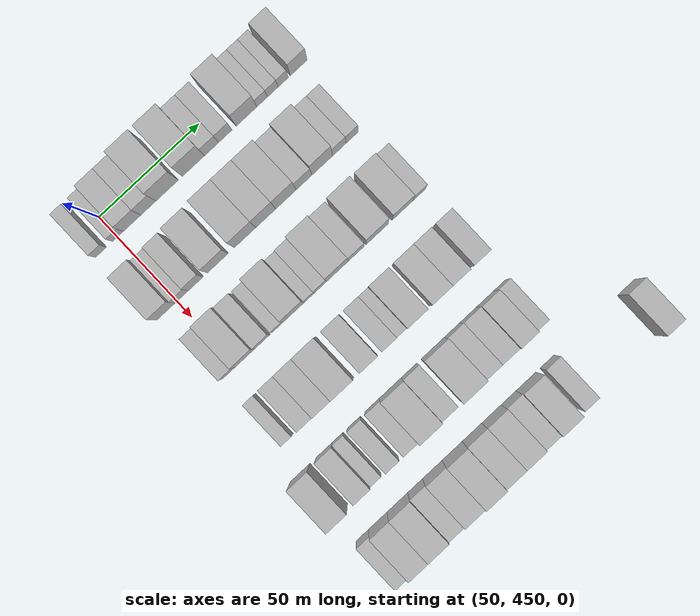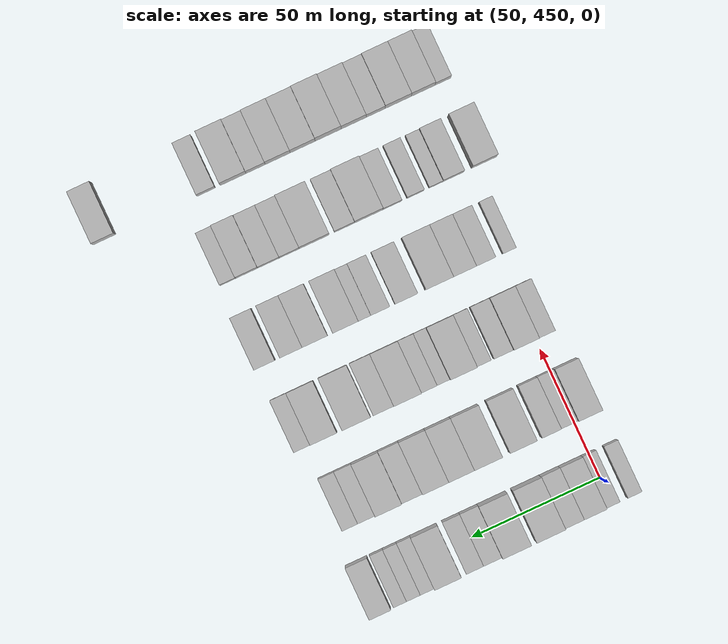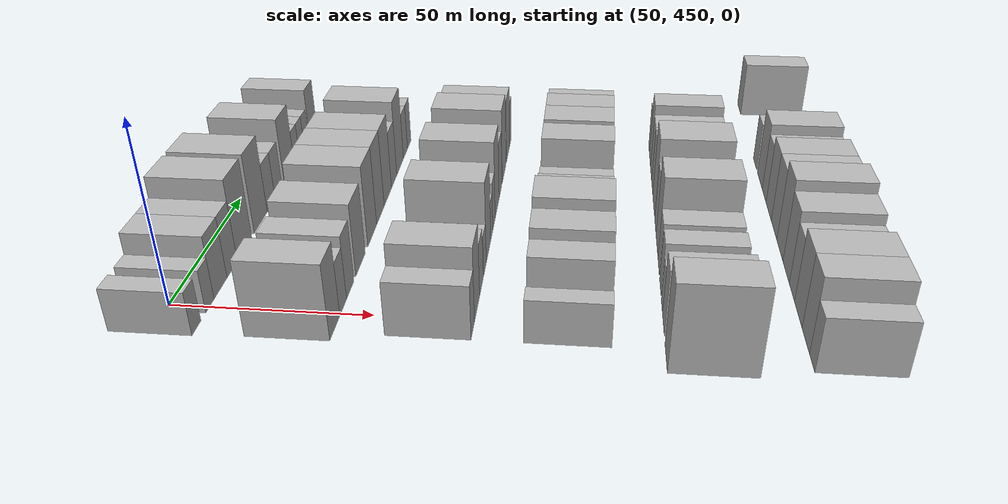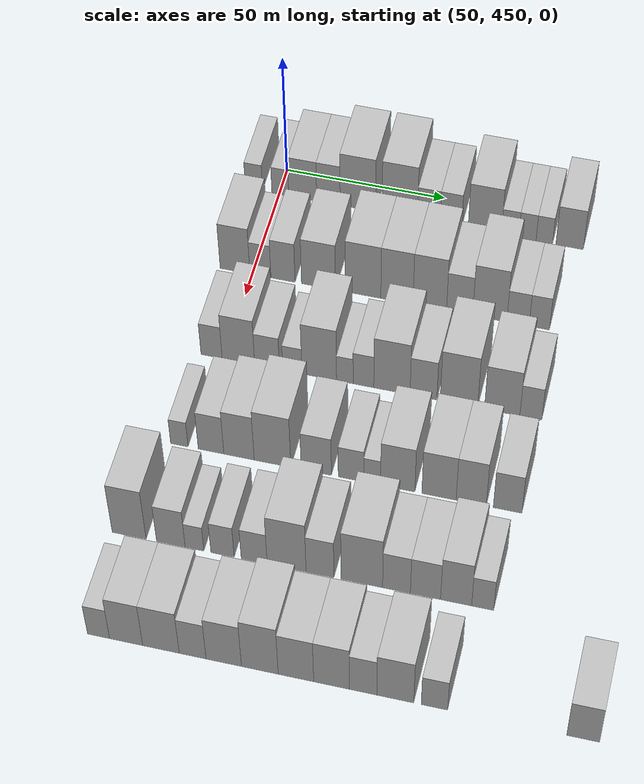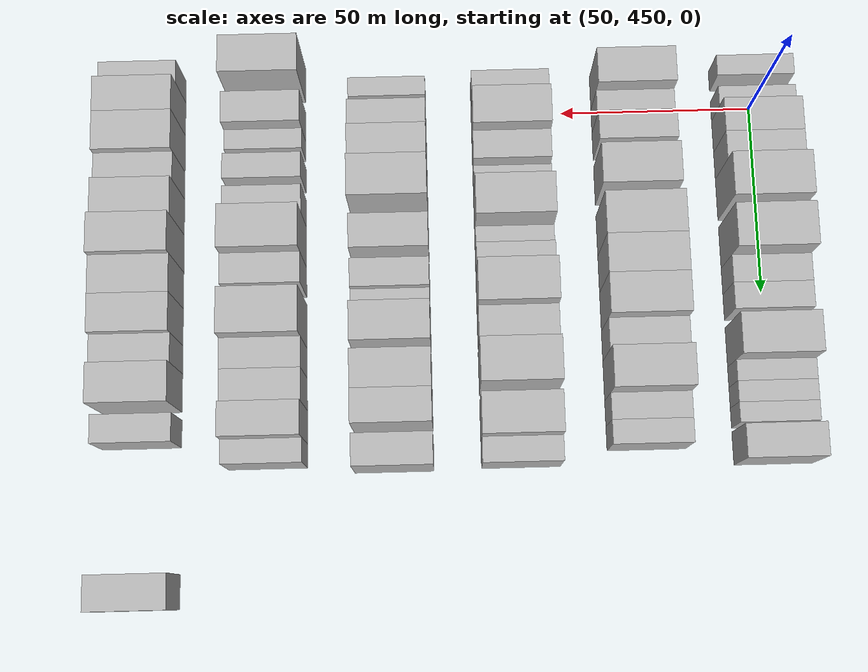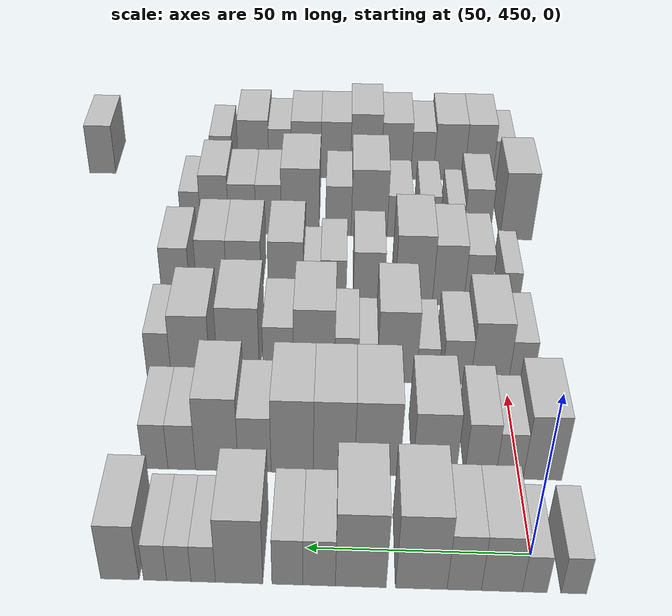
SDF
<sdf version="1.6">
 <world name="default">
  <model name="building_111">
   <static>1</static>
   <pose>50.0000 442.0036 0 0.000000 0.000000 0.000000</pose>
   <link name="link">
    <pose>0 0 6.00 0 0 0</pose>
    <collision name="collision"><geometry><box><size>20.0000 5.4600 12.0000</size></box></geometry></collision>
    <visual name="visual">
     <cast_shadows>0</cast_shadows>
     <geometry><box><size>20.0000 5.4600 12.0000</size></box></geometry>
     <material>
      <script>
       <uri>model://HANNAS_wall/materials/scripts</uri>
       <uri>model://HANNAS_wall/materials/textures</uri>
       <name>vrc/HANNAS_wall</name>
      </script>
     </material>
    </visual>
   </link>
  </model>
  <model name="building_112">
   <static>1</static>
   <pose>50.0000 450.4099 0 0.000000 0.000000 0.000000</pose>
   <link name="link">
    <pose>0 0 6.00 0 0 0</pose>
    <collision name="collision"><geometry><box><size>20.0000 5.3527 12.0000</size></box></geometry></collision>
    <visual name="visual">
     <cast_shadows>0</cast_shadows>
     <geometry><box><size>20.0000 5.3527 12.0000</size></box></geometry>
     <material>
      <script>
       <uri>model://HANNAS_wall/materials/scripts</uri>
       <uri>model://HANNAS_wall/materials/textures</uri>
       <name>vrc/HANNAS_wall</name>
      </script>
     </material>
    </visual>
   </link>
  </model>
  <model name="building_113">
   <static>1</static>
   <pose>50.0000 457.4978 0 0.000000 0.000000 0.000000</pose>
   <link name="link">
    <pose>0 0 9.00 0 0 0</pose>
    <collision name="collision"><geometry><box><size>20.0000 8.8231 18.0000</size></box></geometry></collision>
    <visual name="visual">
     <cast_shadows>0</cast_shadows>
     <geometry><box><size>20.0000 8.8231 18.0000</size></box></geometry>
     <material>
      <script>
       <uri>model://HANNAS_wall/materials/scripts</uri>
       <uri>model://HANNAS_wall/materials/textures</uri>
       <name>vrc/HANNAS_wall</name>
      </script>
     </material>
    </visual>
   </link>
  </model>
  <model name="building_114">
   <static>1</static>
   <pose>50.0000 465.6105 0 0.000000 0.000000 0.000000</pose>
   <link name="link">
    <pose>0 0 9.00 0 0 0</pose>
    <collision name="collision"><geometry><box><size>20.0000 7.4023 18.0000</size></box></geometry></collision>
    <visual name="visual">
     <cast_shadows>0</cast_shadows>
     <geometry><box><size>20.0000 7.4023 18.0000</size></box></geometry>
     <material>
      <script>
       <uri>model://HANNAS_wall/materials/scripts</uri>
       <uri>model://HANNAS_wall/materials/textures</uri>
       <name>vrc/HANNAS_wall</name>
      </script>
     </material>
    </visual>
   </link>
  </model>
  <model name="building_115">
   <static>1</static>
   <pose>50.0000 474.8818 0 0.000000 0.000000 0.000000</pose>
   <link name="link">
    <pose>0 0 12.00 0 0 0</pose>
    <collision name="collision"><geometry><box><size>20.0000 11.1403 24.0000</size></box></geometry></collision>
    <visual name="visual">
     <cast_shadows>0</cast_shadows>
     <geometry><box><size>20.0000 11.1403 24.0000</size></box></geometry>
     <material>
      <script>
       <uri>model://HANNAS_wall/materials/scripts</uri>
       <uri>model://HANNAS_wall/materials/textures</uri>
       <name>vrc/HANNAS_wall</name>
      </script>
     </material>
    </visual>
   </link>
  </model>
  <model name="building_116">
   <static>1</static>
   <pose>50.0000 487.9712 0 0.000000 0.000000 0.000000</pose>
   <link name="link">
    <pose>0 0 12.00 0 0 0</pose>
    <collision name="collision"><geometry><box><size>20.0000 11.0385 24.0000</size></box></geometry></collision>
    <visual name="visual">
     <cast_shadows>0</cast_shadows>
     <geometry><box><size>20.0000 11.0385 24.0000</size></box></geometry>
     <material>
      <script>
       <uri>model://HANNAS_wall/materials/scripts</uri>
       <uri>model://HANNAS_wall/materials/textures</uri>
       <name>vrc/HANNAS_wall</name>
      </script>
     </material>
    </visual>
   </link>
  </model>
  <model name="building_117">
   <static>1</static>
   <pose>50.0000 497.0116 0 0.000000 0.000000 0.000000</pose>
   <link name="link">
    <pose>0 0 7.50 0 0 0</pose>
    <collision name="collision"><geometry><box><size>20.0000 7.0424 15.0000</size></box></geometry></collision>
    <visual name="visual">
     <cast_shadows>0</cast_shadows>
     <geometry><box><size>20.0000 7.0424 15.0000</size></box></geometry>
     <material>
      <script>
       <uri>model://HANNAS_wall/materials/scripts</uri>
       <uri>model://HANNAS_wall/materials/textures</uri>
       <name>vrc/HANNAS_wall</name>
      </script>
     </material>
    </visual>
   </link>
  </model>
  <model name="building_118">
   <static>1</static>
   <pose>50.0000 503.8961 0 0.000000 0.000000 0.000000</pose>
   <link name="link">
    <pose>0 0 7.50 0 0 0</pose>
    <collision name="collision"><geometry><box><size>20.0000 6.7266 15.0000</size></box></geometry></collision>
    <visual name="visual">
     <cast_shadows>0</cast_shadows>
     <geometry><box><size>20.0000 6.7266 15.0000</size></box></geometry>
     <material>
      <script>
       <uri>model://HANNAS_wall/materials/scripts</uri>
       <uri>model://HANNAS_wall/materials/textures</uri>
       <name>vrc/HANNAS_wall</name>
      </script>
     </material>
    </visual>
   </link>
  </model>
  <model name="building_119">
   <static>1</static>
   <pose>50.0000 514.4172 0 0.000000 0.000000 0.000000</pose>
   <link name="link">
    <pose>0 0 10.50 0 0 0</pose>
    <collision name="collision"><geometry><box><size>20.0000 10.3154 21.0000</size></box></geometry></collision>
    <visual name="visual">
     <cast_shadows>0</cast_shadows>
     <geometry><box><size>20.0000 10.3154 21.0000</size></box></geometry>
     <material>
      <script>
       <uri>model://HANNAS_wall/materials/scripts</uri>
       <uri>model://HANNAS_wall/materials/textures</uri>
       <name>vrc/HANNAS_wall</name>
      </script>
     </material>
    </visual>
   </link>
  </model>
  <model name="building_120">
   <static>1</static>
   <pose>50.0000 522.2414 0 0.000000 0.000000 0.000000</pose>
   <link name="link">
    <pose>0 0 6.00 0 0 0</pose>
    <collision name="collision"><geometry><box><size>20.0000 5.3331 12.0000</size></box></geometry></collision>
    <visual name="visual">
     <cast_shadows>0</cast_shadows>
     <geometry><box><size>20.0000 5.3331 12.0000</size></box></geometry>
     <material>
      <script>
       <uri>model://HANNAS_wall/materials/scripts</uri>
       <uri>model://HANNAS_wall/materials/textures</uri>
       <name>vrc/HANNAS_wall</name>
      </script>
     </material>
    </visual>
   </link>
  </model>
  <model name="building_121">
   <static>1</static>
   <pose>50.0000 527.5682 0 0.000000 0.000000 0.000000</pose>
   <link name="link">
    <pose>0 0 6.00 0 0 0</pose>
    <collision name="collision"><geometry><box><size>20.0000 5.3204 12.0000</size></box></geometry></collision>
    <visual name="visual">
     <cast_shadows>0</cast_shadows>
     <geometry><box><size>20.0000 5.3204 12.0000</size></box></geometry>
     <material>
      <script>
       <uri>model://HANNAS_wall/materials/scripts</uri>
       <uri>model://HANNAS_wall/materials/textures</uri>
       <name>vrc/HANNAS_wall</name>
      </script>
     </material>
    </visual>
   </link>
  </model>
  <model name="building_122">
   <static>1</static>
   <pose>50.0000 532.7677 0 0.000000 0.000000 0.000000</pose>
   <link name="link">
    <pose>0 0 6.00 0 0 0</pose>
    <collision name="collision"><geometry><box><size>20.0000 5.0787 12.0000</size></box></geometry></collision>
    <visual name="visual">
     <cast_shadows>0</cast_shadows>
     <geometry><box><size>20.0000 5.0787 12.0000</size></box></geometry>
     <material>
      <script>
       <uri>model://HANNAS_wall/materials/scripts</uri>
       <uri>model://HANNAS_wall/materials/textures</uri>
       <name>vrc/HANNAS_wall</name>
      </script>
     </material>
    </visual>
   </link>
  </model>
  <model name="building_123">
   <static>1</static>
   <pose>50.0000 540.5076 0 0.000000 0.000000 0.000000</pose>
   <link name="link">
    <pose>0 0 9.00 0 0 0</pose>
    <collision name="collision"><geometry><box><size>20.0000 8.4010 18.0000</size></box></geometry></collision>
    <visual name="visual">
     <cast_shadows>0</cast_shadows>
     <geometry><box><size>20.0000 8.4010 18.0000</size></box></geometry>
     <material>
      <script>
       <uri>model://HANNAS_wall/materials/scripts</uri>
       <uri>model://HANNAS_wall/materials/textures</uri>
       <name>vrc/HANNAS_wall</name>
      </script>
     </material>
    </visual>
   </link>
  </model>
  <model name="building_233">
   <static>1</static>
   <pose>82.0000 444.6213 0 0.000000 0.000000 0.000000</pose>
   <link name="link">
    <pose>0 0 10.50 0 0 0</pose>
    <collision name="collision"><geometry><box><size>20.0000 9.1812 21.0000</size></box></geometry></collision>
    <visual name="visual">
     <cast_shadows>0</cast_shadows>
     <geometry><box><size>20.0000 9.1812 21.0000</size></box></geometry>
     <material>
      <script>
       <uri>model://HANNAS_wall/materials/scripts</uri>
       <uri>model://HANNAS_wall/materials/textures</uri>
       <name>vrc/HANNAS_wall</name>
      </script>
     </material>
    </visual>
   </link>
  </model>
  <model name="building_234">
   <static>1</static>
   <pose>82.0000 452.4720 0 0.000000 0.000000 0.000000</pose>
   <link name="link">
    <pose>0 0 7.50 0 0 0</pose>
    <collision name="collision"><geometry><box><size>20.0000 6.5202 15.0000</size></box></geometry></collision>
    <visual name="visual">
     <cast_shadows>0</cast_shadows>
     <geometry><box><size>20.0000 6.5202 15.0000</size></box></geometry>
     <material>
      <script>
       <uri>model://HANNAS_wall/materials/scripts</uri>
       <uri>model://HANNAS_wall/materials/textures</uri>
       <name>vrc/HANNAS_wall</name>
      </script>
     </material>
    </visual>
   </link>
  </model>
  <model name="building_235">
   <static>1</static>
   <pose>82.0000 459.4486 0 0.000000 0.000000 0.000000</pose>
   <link name="link">
    <pose>0 0 9.00 0 0 0</pose>
    <collision name="collision"><geometry><box><size>20.0000 7.4329 18.0000</size></box></geometry></collision>
    <visual name="visual">
     <cast_shadows>0</cast_shadows>
     <geometry><box><size>20.0000 7.4329 18.0000</size></box></geometry>
     <material>
      <script>
       <uri>model://HANNAS_wall/materials/scripts</uri>
       <uri>model://HANNAS_wall/materials/textures</uri>
       <name>vrc/HANNAS_wall</name>
      </script>
     </material>
    </visual>
   </link>
  </model>
  <model name="building_236">
   <static>1</static>
   <pose>82.0000 470.3721 0 0.000000 0.000000 0.000000</pose>
   <link name="link">
    <pose>0 0 10.50 0 0 0</pose>
    <collision name="collision"><geometry><box><size>20.0000 10.4141 21.0000</size></box></geometry></collision>
    <visual name="visual">
     <cast_shadows>0</cast_shadows>
     <geometry><box><size>20.0000 10.4141 21.0000</size></box></geometry>
     <material>
      <script>
       <uri>model://HANNAS_wall/materials/scripts</uri>
       <uri>model://HANNAS_wall/materials/textures</uri>
       <name>vrc/HANNAS_wall</name>
      </script>
     </material>
    </visual>
   </link>
  </model>
  <model name="building_237">
   <static>1</static>
   <pose>82.0000 483.9860 0 0.000000 0.000000 0.000000</pose>
   <link name="link">
    <pose>0 0 12.00 0 0 0</pose>
    <collision name="collision"><geometry><box><size>20.0000 10.8137 24.0000</size></box></geometry></collision>
    <visual name="visual">
     <cast_shadows>0</cast_shadows>
     <geometry><box><size>20.0000 10.8137 24.0000</size></box></geometry>
     <material>
      <script>
       <uri>model://HANNAS_wall/materials/scripts</uri>
       <uri>model://HANNAS_wall/materials/textures</uri>
       <name>vrc/HANNAS_wall</name>
      </script>
     </material>
    </visual>
   </link>
  </model>
  <model name="building_238">
   <static>1</static>
   <pose>82.0000 494.3053 0 0.000000 0.000000 0.000000</pose>
   <link name="link">
    <pose>0 0 12.00 0 0 0</pose>
    <collision name="collision"><geometry><box><size>20.0000 9.8251 24.0000</size></box></geometry></collision>
    <visual name="visual">
     <cast_shadows>0</cast_shadows>
     <geometry><box><size>20.0000 9.8251 24.0000</size></box></geometry>
     <material>
      <script>
       <uri>model://HANNAS_wall/materials/scripts</uri>
       <uri>model://HANNAS_wall/materials/textures</uri>
       <name>vrc/HANNAS_wall</name>
      </script>
     </material>
    </visual>
   </link>
  </model>
  <model name="building_239">
   <static>1</static>
   <pose>82.0000 504.2802 0 0.000000 0.000000 0.000000</pose>
   <link name="link">
    <pose>0 0 12.00 0 0 0</pose>
    <collision name="collision"><geometry><box><size>20.0000 10.1247 24.0000</size></box></geometry></collision>
    <visual name="visual">
     <cast_shadows>0</cast_shadows>
     <geometry><box><size>20.0000 10.1247 24.0000</size></box></geometry>
     <material>
      <script>
       <uri>model://HANNAS_wall/materials/scripts</uri>
       <uri>model://HANNAS_wall/materials/textures</uri>
       <name>vrc/HANNAS_wall</name>
      </script>
     </material>
    </visual>
   </link>
  </model>
  <model name="building_240">
   <static>1</static>
   <pose>82.0000 513.2927 0 0.000000 0.000000 0.000000</pose>
   <link name="link">
    <pose>0 0 9.00 0 0 0</pose>
    <collision name="collision"><geometry><box><size>20.0000 7.9004 18.0000</size></box></geometry></collision>
    <visual name="visual">
     <cast_shadows>0</cast_shadows>
     <geometry><box><size>20.0000 7.9004 18.0000</size></box></geometry>
     <material>
      <script>
       <uri>model://HANNAS_wall/materials/scripts</uri>
       <uri>model://HANNAS_wall/materials/textures</uri>
       <name>vrc/HANNAS_wall</name>
      </script>
     </material>
    </visual>
   </link>
  </model>
  <model name="building_241">
   <static>1</static>
   <pose>82.0000 522.3784 0 0.000000 0.000000 0.000000</pose>
   <link name="link">
    <pose>0 0 12.00 0 0 0</pose>
    <collision name="collision"><geometry><box><size>20.0000 10.2709 24.0000</size></box></geometry></collision>
    <visual name="visual">
     <cast_shadows>0</cast_shadows>
     <geometry><box><size>20.0000 10.2709 24.0000</size></box></geometry>
     <material>
      <script>
       <uri>model://HANNAS_wall/materials/scripts</uri>
       <uri>model://HANNAS_wall/materials/textures</uri>
       <name>vrc/HANNAS_wall</name>
      </script>
     </material>
    </visual>
   </link>
  </model>
  <model name="building_242">
   <static>1</static>
   <pose>82.0000 530.8448 0 0.000000 0.000000 0.000000</pose>
   <link name="link">
    <pose>0 0 7.50 0 0 0</pose>
    <collision name="collision"><geometry><box><size>20.0000 6.6619 15.0000</size></box></geometry></collision>
    <visual name="visual">
     <cast_shadows>0</cast_shadows>
     <geometry><box><size>20.0000 6.6619 15.0000</size></box></geometry>
     <material>
      <script>
       <uri>model://HANNAS_wall/materials/scripts</uri>
       <uri>model://HANNAS_wall/materials/textures</uri>
       <name>vrc/HANNAS_wall</name>
      </script>
     </material>
    </visual>
   </link>
  </model>
  <model name="building_243">
   <static>1</static>
   <pose>82.0000 537.2142 0 0.000000 0.000000 0.000000</pose>
   <link name="link">
    <pose>0 0 7.50 0 0 0</pose>
    <collision name="collision"><geometry><box><size>20.0000 6.0770 15.0000</size></box></geometry></collision>
    <visual name="visual">
     <cast_shadows>0</cast_shadows>
     <geometry><box><size>20.0000 6.0770 15.0000</size></box></geometry>
     <material>
      <script>
       <uri>model://HANNAS_wall/materials/scripts</uri>
       <uri>model://HANNAS_wall/materials/textures</uri>
       <name>vrc/HANNAS_wall</name>
      </script>
     </material>
    </visual>
   </link>
  </model>
  <model name="building_351">
   <static>1</static>
   <pose>114.0000 446.1635 0 0.000000 0.000000 0.000000</pose>
   <link name="link">
    <pose>0 0 7.50 0 0 0</pose>
    <collision name="collision"><geometry><box><size>20.0000 6.3658 15.0000</size></box></geometry></collision>
    <visual name="visual">
     <cast_shadows>0</cast_shadows>
     <geometry><box><size>20.0000 6.3658 15.0000</size></box></geometry>
     <material>
      <script>
       <uri>model://HANNAS_wall/materials/scripts</uri>
       <uri>model://HANNAS_wall/materials/textures</uri>
       <name>vrc/HANNAS_wall</name>
      </script>
     </material>
    </visual>
   </link>
  </model>
  <model name="building_352">
   <static>1</static>
   <pose>114.0000 454.2563 0 0.000000 0.000000 0.000000</pose>
   <link name="link">
    <pose>0 0 10.50 0 0 0</pose>
    <collision name="collision"><geometry><box><size>20.0000 9.8198 21.0000</size></box></geometry></collision>
    <visual name="visual">
     <cast_shadows>0</cast_shadows>
     <geometry><box><size>20.0000 9.8198 21.0000</size></box></geometry>
     <material>
      <script>
       <uri>model://HANNAS_wall/materials/scripts</uri>
       <uri>model://HANNAS_wall/materials/textures</uri>
       <name>vrc/HANNAS_wall</name>
      </script>
     </material>
    </visual>
   </link>
  </model>
  <model name="building_353">
   <static>1</static>
   <pose>114.0000 462.8729 0 0.000000 0.000000 0.000000</pose>
   <link name="link">
    <pose>0 0 7.50 0 0 0</pose>
    <collision name="collision"><geometry><box><size>20.0000 7.4135 15.0000</size></box></geometry></collision>
    <visual name="visual">
     <cast_shadows>0</cast_shadows>
     <geometry><box><size>20.0000 7.4135 15.0000</size></box></geometry>
     <material>
      <script>
       <uri>model://HANNAS_wall/materials/scripts</uri>
       <uri>model://HANNAS_wall/materials/textures</uri>
       <name>vrc/HANNAS_wall</name>
      </script>
     </material>
    </visual>
   </link>
  </model>
  <model name="building_354">
   <static>1</static>
   <pose>114.0000 470.4361 0 0.000000 0.000000 0.000000</pose>
   <link name="link">
    <pose>0 0 6.00 0 0 0</pose>
    <collision name="collision"><geometry><box><size>20.0000 5.7128 12.0000</size></box></geometry></collision>
    <visual name="visual">
     <cast_shadows>0</cast_shadows>
     <geometry><box><size>20.0000 5.7128 12.0000</size></box></geometry>
     <material>
      <script>
       <uri>model://HANNAS_wall/materials/scripts</uri>
       <uri>model://HANNAS_wall/materials/textures</uri>
       <name>vrc/HANNAS_wall</name>
      </script>
     </material>
    </visual>
   </link>
  </model>
  <model name="building_355">
   <static>1</static>
   <pose>114.0000 478.4560 0 0.000000 0.000000 0.000000</pose>
   <link name="link">
    <pose>0 0 12.00 0 0 0</pose>
    <collision name="collision"><geometry><box><size>20.0000 10.3272 24.0000</size></box></geometry></collision>
    <visual name="visual">
     <cast_shadows>0</cast_shadows>
     <geometry><box><size>20.0000 10.3272 24.0000</size></box></geometry>
     <material>
      <script>
       <uri>model://HANNAS_wall/materials/scripts</uri>
       <uri>model://HANNAS_wall/materials/textures</uri>
       <name>vrc/HANNAS_wall</name>
      </script>
     </material>
    </visual>
   </link>
  </model>
  <model name="building_356">
   <static>1</static>
   <pose>114.0000 486.0853 0 0.000000 0.000000 0.000000</pose>
   <link name="link">
    <pose>0 0 6.00 0 0 0</pose>
    <collision name="collision"><geometry><box><size>20.0000 4.9314 12.0000</size></box></geometry></collision>
    <visual name="visual">
     <cast_shadows>0</cast_shadows>
     <geometry><box><size>20.0000 4.9314 12.0000</size></box></geometry>
     <material>
      <script>
       <uri>model://HANNAS_wall/materials/scripts</uri>
       <uri>model://HANNAS_wall/materials/textures</uri>
       <name>vrc/HANNAS_wall</name>
      </script>
     </material>
    </visual>
   </link>
  </model>
  <model name="building_357">
   <static>1</static>
   <pose>114.0000 491.6095 0 0.000000 0.000000 0.000000</pose>
   <link name="link">
    <pose>0 0 7.50 0 0 0</pose>
    <collision name="collision"><geometry><box><size>20.0000 6.1168 15.0000</size></box></geometry></collision>
    <visual name="visual">
     <cast_shadows>0</cast_shadows>
     <geometry><box><size>20.0000 6.1168 15.0000</size></box></geometry>
     <material>
      <script>
       <uri>model://HANNAS_wall/materials/scripts</uri>
       <uri>model://HANNAS_wall/materials/textures</uri>
       <name>vrc/HANNAS_wall</name>
      </script>
     </material>
    </visual>
   </link>
  </model>
  <model name="building_358">
   <static>1</static>
   <pose>114.0000 500.0259 0 0.000000 0.000000 0.000000</pose>
   <link name="link">
    <pose>0 0 12.00 0 0 0</pose>
    <collision name="collision"><geometry><box><size>20.0000 10.7162 24.0000</size></box></geometry></collision>
    <visual name="visual">
     <cast_shadows>0</cast_shadows>
     <geometry><box><size>20.0000 10.7162 24.0000</size></box></geometry>
     <material>
      <script>
       <uri>model://HANNAS_wall/materials/scripts</uri>
       <uri>model://HANNAS_wall/materials/textures</uri>
       <name>vrc/HANNAS_wall</name>
      </script>
     </material>
    </visual>
   </link>
  </model>
  <model name="building_359">
   <static>1</static>
   <pose>114.0000 509.3288 0 0.000000 0.000000 0.000000</pose>
   <link name="link">
    <pose>0 0 9.00 0 0 0</pose>
    <collision name="collision"><geometry><box><size>20.0000 7.8896 18.0000</size></box></geometry></collision>
    <visual name="visual">
     <cast_shadows>0</cast_shadows>
     <geometry><box><size>20.0000 7.8896 18.0000</size></box></geometry>
     <material>
      <script>
       <uri>model://HANNAS_wall/materials/scripts</uri>
       <uri>model://HANNAS_wall/materials/textures</uri>
       <name>vrc/HANNAS_wall</name>
      </script>
     </material>
    </visual>
   </link>
  </model>
  <model name="building_360">
   <static>1</static>
   <pose>114.0000 519.7587 0 0.000000 0.000000 0.000000</pose>
   <link name="link">
    <pose>0 0 12.00 0 0 0</pose>
    <collision name="collision"><geometry><box><size>20.0000 10.9702 24.0000</size></box></geometry></collision>
    <visual name="visual">
     <cast_shadows>0</cast_shadows>
     <geometry><box><size>20.0000 10.9702 24.0000</size></box></geometry>
     <material>
      <script>
       <uri>model://HANNAS_wall/materials/scripts</uri>
       <uri>model://HANNAS_wall/materials/textures</uri>
       <name>vrc/HANNAS_wall</name>
      </script>
     </material>
    </visual>
   </link>
  </model>
  <model name="building_361">
   <static>1</static>
   <pose>114.0000 532.3979 0 0.000000 0.000000 0.000000</pose>
   <link name="link">
    <pose>0 0 10.50 0 0 0</pose>
    <collision name="collision"><geometry><box><size>20.0000 10.3083 21.0000</size></box></geometry></collision>
    <visual name="visual">
     <cast_shadows>0</cast_shadows>
     <geometry><box><size>20.0000 10.3083 21.0000</size></box></geometry>
     <material>
      <script>
       <uri>model://HANNAS_wall/materials/scripts</uri>
       <uri>model://HANNAS_wall/materials/textures</uri>
       <name>vrc/HANNAS_wall</name>
      </script>
     </material>
    </visual>
   </link>
  </model>
  <model name="building_362">
   <static>1</static>
   <pose>114.0000 540.7414 0 0.000000 0.000000 0.000000</pose>
   <link name="link">
    <pose>0 0 7.50 0 0 0</pose>
    <collision name="collision"><geometry><box><size>20.0000 6.3786 15.0000</size></box></geometry></collision>
    <visual name="visual">
     <cast_shadows>0</cast_shadows>
     <geometry><box><size>20.0000 6.3786 15.0000</size></box></geometry>
     <material>
      <script>
       <uri>model://HANNAS_wall/materials/scripts</uri>
       <uri>model://HANNAS_wall/materials/textures</uri>
       <name>vrc/HANNAS_wall</name>
      </script>
     </material>
    </visual>
   </link>
  </model>
  <model name="building_470">
   <static>1</static>
   <pose>146.0000 445.5313 0 0.000000 0.000000 0.000000</pose>
   <link name="link">
    <pose>0 0 6.00 0 0 0</pose>
    <collision name="collision"><geometry><box><size>20.0000 5.1039 12.0000</size></box></geometry></collision>
    <visual name="visual">
     <cast_shadows>0</cast_shadows>
     <geometry><box><size>20.0000 5.1039 12.0000</size></box></geometry>
     <material>
      <script>
       <uri>model://HANNAS_wall/materials/scripts</uri>
       <uri>model://HANNAS_wall/materials/textures</uri>
       <name>vrc/HANNAS_wall</name>
      </script>
     </material>
    </visual>
   </link>
  </model>
  <model name="building_471">
   <static>1</static>
   <pose>146.0000 454.8361 0 0.000000 0.000000 0.000000</pose>
   <link name="link">
    <pose>0 0 9.00 0 0 0</pose>
    <collision name="collision"><geometry><box><size>20.0000 7.5058 18.0000</size></box></geometry></collision>
    <visual name="visual">
     <cast_shadows>0</cast_shadows>
     <geometry><box><size>20.0000 7.5058 18.0000</size></box></geometry>
     <material>
      <script>
       <uri>model://HANNAS_wall/materials/scripts</uri>
       <uri>model://HANNAS_wall/materials/textures</uri>
       <name>vrc/HANNAS_wall</name>
      </script>
     </material>
    </visual>
   </link>
  </model>
  <model name="building_472">
   <static>1</static>
   <pose>146.0000 463.0250 0 0.000000 0.000000 0.000000</pose>
   <link name="link">
    <pose>0 0 10.50 0 0 0</pose>
    <collision name="collision"><geometry><box><size>20.0000 8.8720 21.0000</size></box></geometry></collision>
    <visual name="visual">
     <cast_shadows>0</cast_shadows>
     <geometry><box><size>20.0000 8.8720 21.0000</size></box></geometry>
     <material>
      <script>
       <uri>model://HANNAS_wall/materials/scripts</uri>
       <uri>model://HANNAS_wall/materials/textures</uri>
       <name>vrc/HANNAS_wall</name>
      </script>
     </material>
    </visual>
   </link>
  </model>
  <model name="building_473">
   <static>1</static>
   <pose>146.0000 472.7866 0 0.000000 0.000000 0.000000</pose>
   <link name="link">
    <pose>0 0 12.00 0 0 0</pose>
    <collision name="collision"><geometry><box><size>20.0000 10.6513 24.0000</size></box></geometry></collision>
    <visual name="visual">
     <cast_shadows>0</cast_shadows>
     <geometry><box><size>20.0000 10.6513 24.0000</size></box></geometry>
     <material>
      <script>
       <uri>model://HANNAS_wall/materials/scripts</uri>
       <uri>model://HANNAS_wall/materials/textures</uri>
       <name>vrc/HANNAS_wall</name>
      </script>
     </material>
    </visual>
   </link>
  </model>
  <model name="building_474">
   <static>1</static>
   <pose>146.0000 485.4889 0 0.000000 0.000000 0.000000</pose>
   <link name="link">
    <pose>0 0 9.00 0 0 0</pose>
    <collision name="collision"><geometry><box><size>20.0000 8.7534 18.0000</size></box></geometry></collision>
    <visual name="visual">
     <cast_shadows>0</cast_shadows>
     <geometry><box><size>20.0000 8.7534 18.0000</size></box></geometry>
     <material>
      <script>
       <uri>model://HANNAS_wall/materials/scripts</uri>
       <uri>model://HANNAS_wall/materials/textures</uri>
       <name>vrc/HANNAS_wall</name>
      </script>
     </material>
    </visual>
   </link>
  </model>
  <model name="building_475">
   <static>1</static>
   <pose>146.0000 495.5238 0 0.000000 0.000000 0.000000</pose>
   <link name="link">
    <pose>0 0 7.50 0 0 0</pose>
    <collision name="collision"><geometry><box><size>20.0000 7.3164 15.0000</size></box></geometry></collision>
    <visual name="visual">
     <cast_shadows>0</cast_shadows>
     <geometry><box><size>20.0000 7.3164 15.0000</size></box></geometry>
     <material>
      <script>
       <uri>model://HANNAS_wall/materials/scripts</uri>
       <uri>model://HANNAS_wall/materials/textures</uri>
       <name>vrc/HANNAS_wall</name>
      </script>
     </material>
    </visual>
   </link>
  </model>
  <model name="building_476">
   <static>1</static>
   <pose>146.0000 501.5954 0 0.000000 0.000000 0.000000</pose>
   <link name="link">
    <pose>0 0 6.00 0 0 0</pose>
    <collision name="collision"><geometry><box><size>20.0000 4.8267 12.0000</size></box></geometry></collision>
    <visual name="visual">
     <cast_shadows>0</cast_shadows>
     <geometry><box><size>20.0000 4.8267 12.0000</size></box></geometry>
     <material>
      <script>
       <uri>model://HANNAS_wall/materials/scripts</uri>
       <uri>model://HANNAS_wall/materials/textures</uri>
       <name>vrc/HANNAS_wall</name>
      </script>
     </material>
    </visual>
   </link>
  </model>
  <model name="building_477">
   <static>1</static>
   <pose>146.0000 508.9383 0 0.000000 0.000000 0.000000</pose>
   <link name="link">
    <pose>0 0 10.50 0 0 0</pose>
    <collision name="collision"><geometry><box><size>20.0000 9.8592 21.0000</size></box></geometry></collision>
    <visual name="visual">
     <cast_shadows>0</cast_shadows>
     <geometry><box><size>20.0000 9.8592 21.0000</size></box></geometry>
     <material>
      <script>
       <uri>model://HANNAS_wall/materials/scripts</uri>
       <uri>model://HANNAS_wall/materials/textures</uri>
       <name>vrc/HANNAS_wall</name>
      </script>
     </material>
    </visual>
   </link>
  </model>
  <model name="building_478">
   <static>1</static>
   <pose>146.0000 520.7477 0 0.000000 0.000000 0.000000</pose>
   <link name="link">
    <pose>0 0 10.50 0 0 0</pose>
    <collision name="collision"><geometry><box><size>20.0000 9.7596 21.0000</size></box></geometry></collision>
    <visual name="visual">
     <cast_shadows>0</cast_shadows>
     <geometry><box><size>20.0000 9.7596 21.0000</size></box></geometry>
     <material>
      <script>
       <uri>model://HANNAS_wall/materials/scripts</uri>
       <uri>model://HANNAS_wall/materials/textures</uri>
       <name>vrc/HANNAS_wall</name>
      </script>
     </material>
    </visual>
   </link>
  </model>
  <model name="building_479">
   <static>1</static>
   <pose>146.0000 529.9141 0 0.000000 0.000000 0.000000</pose>
   <link name="link">
    <pose>0 0 10.50 0 0 0</pose>
    <collision name="collision"><geometry><box><size>20.0000 8.5731 21.0000</size></box></geometry></collision>
    <visual name="visual">
     <cast_shadows>0</cast_shadows>
     <geometry><box><size>20.0000 8.5731 21.0000</size></box></geometry>
     <material>
      <script>
       <uri>model://HANNAS_wall/materials/scripts</uri>
       <uri>model://HANNAS_wall/materials/textures</uri>
       <name>vrc/HANNAS_wall</name>
      </script>
     </material>
    </visual>
   </link>
  </model>
  <model name="building_480">
   <static>1</static>
   <pose>146.0000 540.2436 0 0.000000 0.000000 0.000000</pose>
   <link name="link">
    <pose>0 0 9.00 0 0 0</pose>
    <collision name="collision"><geometry><box><size>20.0000 8.0859 18.0000</size></box></geometry></collision>
    <visual name="visual">
     <cast_shadows>0</cast_shadows>
     <geometry><box><size>20.0000 8.0859 18.0000</size></box></geometry>
     <material>
      <script>
       <uri>model://HANNAS_wall/materials/scripts</uri>
       <uri>model://HANNAS_wall/materials/textures</uri>
       <name>vrc/HANNAS_wall</name>
      </script>
     </material>
    </visual>
   </link>
  </model>
  <model name="building_589">
   <static>1</static>
   <pose>178.0000 440.2618 0 0.000000 0.000000 0.000000</pose>
   <link name="link">
    <pose>0 0 12.00 0 0 0</pose>
    <collision name="collision"><geometry><box><size>20.0000 9.7331 24.0000</size></box></geometry></collision>
    <visual name="visual">
     <cast_shadows>0</cast_shadows>
     <geometry><box><size>20.0000 9.7331 24.0000</size></box></geometry>
     <material>
      <script>
       <uri>model://HANNAS_wall/materials/scripts</uri>
       <uri>model://HANNAS_wall/materials/textures</uri>
       <name>vrc/HANNAS_wall</name>
      </script>
     </material>
    </visual>
   </link>
  </model>
  <model name="building_590">
   <static>1</static>
   <pose>178.0000 452.2176 0 0.000000 0.000000 0.000000</pose>
   <link name="link">
    <pose>0 0 9.00 0 0 0</pose>
    <collision name="collision"><geometry><box><size>20.0000 8.1786 18.0000</size></box></geometry></collision>
    <visual name="visual">
     <cast_shadows>0</cast_shadows>
     <geometry><box><size>20.0000 8.1786 18.0000</size></box></geometry>
     <material>
      <script>
       <uri>model://HANNAS_wall/materials/scripts</uri>
       <uri>model://HANNAS_wall/materials/textures</uri>
       <name>vrc/HANNAS_wall</name>
      </script>
     </material>
    </visual>
   </link>
  </model>
  <model name="building_591">
   <static>1</static>
   <pose>178.0000 458.9679 0 0.000000 0.000000 0.000000</pose>
   <link name="link">
    <pose>0 0 6.00 0 0 0</pose>
    <collision name="collision"><geometry><box><size>20.0000 5.3220 12.0000</size></box></geometry></collision>
    <visual name="visual">
     <cast_shadows>0</cast_shadows>
     <geometry><box><size>20.0000 5.3220 12.0000</size></box></geometry>
     <material>
      <script>
       <uri>model://HANNAS_wall/materials/scripts</uri>
       <uri>model://HANNAS_wall/materials/textures</uri>
       <name>vrc/HANNAS_wall</name>
      </script>
     </material>
    </visual>
   </link>
  </model>
  <model name="building_592">
   <static>1</static>
   <pose>178.0000 466.9301 0 0.000000 0.000000 0.000000</pose>
   <link name="link">
    <pose>0 0 7.50 0 0 0</pose>
    <collision name="collision"><geometry><box><size>20.0000 6.6025 15.0000</size></box></geometry></collision>
    <visual name="visual">
     <cast_shadows>0</cast_shadows>
     <geometry><box><size>20.0000 6.6025 15.0000</size></box></geometry>
     <material>
      <script>
       <uri>model://HANNAS_wall/materials/scripts</uri>
       <uri>model://HANNAS_wall/materials/textures</uri>
       <name>vrc/HANNAS_wall</name>
      </script>
     </material>
    </visual>
   </link>
  </model>
  <model name="building_593">
   <static>1</static>
   <pose>178.0000 475.8964 0 0.000000 0.000000 0.000000</pose>
   <link name="link">
    <pose>0 0 7.50 0 0 0</pose>
    <collision name="collision"><geometry><box><size>20.0000 7.3300 15.0000</size></box></geometry></collision>
    <visual name="visual">
     <cast_shadows>0</cast_shadows>
     <geometry><box><size>20.0000 7.3300 15.0000</size></box></geometry>
     <material>
      <script>
       <uri>model://HANNAS_wall/materials/scripts</uri>
       <uri>model://HANNAS_wall/materials/textures</uri>
       <name>vrc/HANNAS_wall</name>
      </script>
     </material>
    </visual>
   </link>
  </model>
  <model name="building_594">
   <static>1</static>
   <pose>178.0000 485.0520 0 0.000000 0.000000 0.000000</pose>
   <link name="link">
    <pose>0 0 12.00 0 0 0</pose>
    <collision name="collision"><geometry><box><size>20.0000 10.9813 24.0000</size></box></geometry></collision>
    <visual name="visual">
     <cast_shadows>0</cast_shadows>
     <geometry><box><size>20.0000 10.9813 24.0000</size></box></geometry>
     <material>
      <script>
       <uri>model://HANNAS_wall/materials/scripts</uri>
       <uri>model://HANNAS_wall/materials/textures</uri>
       <name>vrc/HANNAS_wall</name>
      </script>
     </material>
    </visual>
   </link>
  </model>
  <model name="building_595">
   <static>1</static>
   <pose>178.0000 494.4513 0 0.000000 0.000000 0.000000</pose>
   <link name="link">
    <pose>0 0 9.00 0 0 0</pose>
    <collision name="collision"><geometry><box><size>20.0000 7.8171 18.0000</size></box></geometry></collision>
    <visual name="visual">
     <cast_shadows>0</cast_shadows>
     <geometry><box><size>20.0000 7.8171 18.0000</size></box></geometry>
     <material>
      <script>
       <uri>model://HANNAS_wall/materials/scripts</uri>
       <uri>model://HANNAS_wall/materials/textures</uri>
       <name>vrc/HANNAS_wall</name>
      </script>
     </material>
    </visual>
   </link>
  </model>
  <model name="building_596">
   <static>1</static>
   <pose>178.0000 506.1465 0 0.000000 0.000000 0.000000</pose>
   <link name="link">
    <pose>0 0 12.00 0 0 0</pose>
    <collision name="collision"><geometry><box><size>20.0000 11.5732 24.0000</size></box></geometry></collision>
    <visual name="visual">
     <cast_shadows>0</cast_shadows>
     <geometry><box><size>20.0000 11.5732 24.0000</size></box></geometry>
     <material>
      <script>
       <uri>model://HANNAS_wall/materials/scripts</uri>
       <uri>model://HANNAS_wall/materials/textures</uri>
       <name>vrc/HANNAS_wall</name>
      </script>
     </material>
    </visual>
   </link>
  </model>
  <model name="building_597">
   <static>1</static>
   <pose>178.0000 515.8059 0 0.000000 0.000000 0.000000</pose>
   <link name="link">
    <pose>0 0 9.00 0 0 0</pose>
    <collision name="collision"><geometry><box><size>20.0000 7.7456 18.0000</size></box></geometry></collision>
    <visual name="visual">
     <cast_shadows>0</cast_shadows>
     <geometry><box><size>20.0000 7.7456 18.0000</size></box></geometry>
     <material>
      <script>
       <uri>model://HANNAS_wall/materials/scripts</uri>
       <uri>model://HANNAS_wall/materials/textures</uri>
       <name>vrc/HANNAS_wall</name>
      </script>
     </material>
    </visual>
   </link>
  </model>
  <model name="building_598">
   <static>1</static>
   <pose>178.0000 523.8519 0 0.000000 0.000000 0.000000</pose>
   <link name="link">
    <pose>0 0 9.00 0 0 0</pose>
    <collision name="collision"><geometry><box><size>20.0000 8.3463 18.0000</size></box></geometry></collision>
    <visual name="visual">
     <cast_shadows>0</cast_shadows>
     <geometry><box><size>20.0000 8.3463 18.0000</size></box></geometry>
     <material>
      <script>
       <uri>model://HANNAS_wall/materials/scripts</uri>
       <uri>model://HANNAS_wall/materials/textures</uri>
       <name>vrc/HANNAS_wall</name>
      </script>
     </material>
    </visual>
   </link>
  </model>
  <model name="building_599">
   <static>1</static>
   <pose>178.0000 532.3149 0 0.000000 0.000000 0.000000</pose>
   <link name="link">
    <pose>0 0 10.50 0 0 0</pose>
    <collision name="collision"><geometry><box><size>20.0000 8.5798 21.0000</size></box></geometry></collision>
    <visual name="visual">
     <cast_shadows>0</cast_shadows>
     <geometry><box><size>20.0000 8.5798 21.0000</size></box></geometry>
     <material>
      <script>
       <uri>model://HANNAS_wall/materials/scripts</uri>
       <uri>model://HANNAS_wall/materials/textures</uri>
       <name>vrc/HANNAS_wall</name>
      </script>
     </material>
    </visual>
   </link>
  </model>
  <model name="building_600">
   <static>1</static>
   <pose>178.0000 539.6432 0 0.000000 0.000000 0.000000</pose>
   <link name="link">
    <pose>0 0 7.50 0 0 0</pose>
    <collision name="collision"><geometry><box><size>20.0000 6.0768 15.0000</size></box></geometry></collision>
    <visual name="visual">
     <cast_shadows>0</cast_shadows>
     <geometry><box><size>20.0000 6.0768 15.0000</size></box></geometry>
     <material>
      <script>
       <uri>model://HANNAS_wall/materials/scripts</uri>
       <uri>model://HANNAS_wall/materials/textures</uri>
       <name>vrc/HANNAS_wall</name>
      </script>
     </material>
    </visual>
   </link>
  </model>
  <model name="building_699">
   <static>1</static>
   <pose>210.0000 441.2800 0 0.000000 0.000000 0.000000</pose>
   <link name="link">
    <pose>0 0 7.50 0 0 0</pose>
    <collision name="collision"><geometry><box><size>20.0000 6.1737 15.0000</size></box></geometry></collision>
    <visual name="visual">
     <cast_shadows>0</cast_shadows>
     <geometry><box><size>20.0000 6.1737 15.0000</size></box></geometry>
     <material>
      <script>
       <uri>model://HANNAS_wall/materials/scripts</uri>
       <uri>model://HANNAS_wall/materials/textures</uri>
       <name>vrc/HANNAS_wall</name>
      </script>
     </material>
    </visual>
   </link>
  </model>
  <model name="building_700">
   <static>1</static>
   <pose>210.0000 448.9754 0 0.000000 0.000000 0.000000</pose>
   <link name="link">
    <pose>0 0 10.50 0 0 0</pose>
    <collision name="collision"><geometry><box><size>20.0000 9.2170 21.0000</size></box></geometry></collision>
    <visual name="visual">
     <cast_shadows>0</cast_shadows>
     <geometry><box><size>20.0000 9.2170 21.0000</size></box></geometry>
     <material>
      <script>
       <uri>model://HANNAS_wall/materials/scripts</uri>
       <uri>model://HANNAS_wall/materials/textures</uri>
       <name>vrc/HANNAS_wall</name>
      </script>
     </material>
    </visual>
   </link>
  </model>
  <model name="building_701">
   <static>1</static>
   <pose>210.0000 458.6489 0 0.000000 0.000000 0.000000</pose>
   <link name="link">
    <pose>0 0 10.50 0 0 0</pose>
    <collision name="collision"><geometry><box><size>20.0000 10.1301 21.0000</size></box></geometry></collision>
    <visual name="visual">
     <cast_shadows>0</cast_shadows>
     <geometry><box><size>20.0000 10.1301 21.0000</size></box></geometry>
     <material>
      <script>
       <uri>model://HANNAS_wall/materials/scripts</uri>
       <uri>model://HANNAS_wall/materials/textures</uri>
       <name>vrc/HANNAS_wall</name>
      </script>
     </material>
    </visual>
   </link>
  </model>
  <model name="building_702">
   <static>1</static>
   <pose>210.0000 467.4202 0 0.000000 0.000000 0.000000</pose>
   <link name="link">
    <pose>0 0 9.00 0 0 0</pose>
    <collision name="collision"><geometry><box><size>20.0000 7.4124 18.0000</size></box></geometry></collision>
    <visual name="visual">
     <cast_shadows>0</cast_shadows>
     <geometry><box><size>20.0000 7.4124 18.0000</size></box></geometry>
     <material>
      <script>
       <uri>model://HANNAS_wall/materials/scripts</uri>
       <uri>model://HANNAS_wall/materials/textures</uri>
       <name>vrc/HANNAS_wall</name>
      </script>
     </material>
    </visual>
   </link>
  </model>
  <model name="building_703">
   <static>1</static>
   <pose>210.0000 475.9944 0 0.000000 0.000000 0.000000</pose>
   <link name="link">
    <pose>0 0 10.50 0 0 0</pose>
    <collision name="collision"><geometry><box><size>20.0000 9.7359 21.0000</size></box></geometry></collision>
    <visual name="visual">
     <cast_shadows>0</cast_shadows>
     <geometry><box><size>20.0000 9.7359 21.0000</size></box></geometry>
     <material>
      <script>
       <uri>model://HANNAS_wall/materials/scripts</uri>
       <uri>model://HANNAS_wall/materials/textures</uri>
       <name>vrc/HANNAS_wall</name>
      </script>
     </material>
    </visual>
   </link>
  </model>
  <model name="building_704">
   <static>1</static>
   <pose>210.0000 485.8903 0 0.000000 0.000000 0.000000</pose>
   <link name="link">
    <pose>0 0 12.00 0 0 0</pose>
    <collision name="collision"><geometry><box><size>20.0000 10.0558 24.0000</size></box></geometry></collision>
    <visual name="visual">
     <cast_shadows>0</cast_shadows>
     <geometry><box><size>20.0000 10.0558 24.0000</size></box></geometry>
     <material>
      <script>
       <uri>model://HANNAS_wall/materials/scripts</uri>
       <uri>model://HANNAS_wall/materials/textures</uri>
       <name>vrc/HANNAS_wall</name>
      </script>
     </material>
    </visual>
   </link>
  </model>
  <model name="building_705">
   <static>1</static>
   <pose>210.0000 495.7572 0 0.000000 0.000000 0.000000</pose>
   <link name="link">
    <pose>0 0 10.50 0 0 0</pose>
    <collision name="collision"><geometry><box><size>20.0000 9.6779 21.0000</size></box></geometry></collision>
    <visual name="visual">
     <cast_shadows>0</cast_shadows>
     <geometry><box><size>20.0000 9.6779 21.0000</size></box></geometry>
     <material>
      <script>
       <uri>model://HANNAS_wall/materials/scripts</uri>
       <uri>model://HANNAS_wall/materials/textures</uri>
       <name>vrc/HANNAS_wall</name>
      </script>
     </material>
    </visual>
   </link>
  </model>
  <model name="building_706">
   <static>1</static>
   <pose>210.0000 505.4341 0 0.000000 0.000000 0.000000</pose>
   <link name="link">
    <pose>0 0 10.50 0 0 0</pose>
    <collision name="collision"><geometry><box><size>20.0000 9.6759 21.0000</size></box></geometry></collision>
    <visual name="visual">
     <cast_shadows>0</cast_shadows>
     <geometry><box><size>20.0000 9.6759 21.0000</size></box></geometry>
     <material>
      <script>
       <uri>model://HANNAS_wall/materials/scripts</uri>
       <uri>model://HANNAS_wall/materials/textures</uri>
       <name>vrc/HANNAS_wall</name>
      </script>
     </material>
    </visual>
   </link>
  </model>
  <model name="building_707">
   <static>1</static>
   <pose>210.0000 513.9907 0 0.000000 0.000000 0.000000</pose>
   <link name="link">
    <pose>0 0 9.00 0 0 0</pose>
    <collision name="collision"><geometry><box><size>20.0000 7.4373 18.0000</size></box></geometry></collision>
    <visual name="visual">
     <cast_shadows>0</cast_shadows>
     <geometry><box><size>20.0000 7.4373 18.0000</size></box></geometry>
     <material>
      <script>
       <uri>model://HANNAS_wall/materials/scripts</uri>
       <uri>model://HANNAS_wall/materials/textures</uri>
       <name>vrc/HANNAS_wall</name>
      </script>
     </material>
    </visual>
   </link>
  </model>
  <model name="building_708">
   <static>1</static>
   <pose>210.0000 522.6928 0 0.000000 0.000000 0.000000</pose>
   <link name="link">
    <pose>0 0 10.50 0 0 0</pose>
    <collision name="collision"><geometry><box><size>20.0000 9.9669 21.0000</size></box></geometry></collision>
    <visual name="visual">
     <cast_shadows>0</cast_shadows>
     <geometry><box><size>20.0000 9.9669 21.0000</size></box></geometry>
     <material>
      <script>
       <uri>model://HANNAS_wall/materials/scripts</uri>
       <uri>model://HANNAS_wall/materials/textures</uri>
       <name>vrc/HANNAS_wall</name>
      </script>
     </material>
    </visual>
   </link>
  </model>
  <model name="building_709">
   <static>1</static>
   <pose>210.0000 533.2183 0 0.000000 0.000000 0.000000</pose>
   <link name="link">
    <pose>0 0 7.50 0 0 0</pose>
    <collision name="collision"><geometry><box><size>20.0000 7.0840 15.0000</size></box></geometry></collision>
    <visual name="visual">
     <cast_shadows>0</cast_shadows>
     <geometry><box><size>20.0000 7.0840 15.0000</size></box></geometry>
     <material>
      <script>
       <uri>model://HANNAS_wall/materials/scripts</uri>
       <uri>model://HANNAS_wall/materials/textures</uri>
       <name>vrc/HANNAS_wall</name>
      </script>
     </material>
    </visual>
   </link>
  </model>
  <model name="building_710">
   <static>1</static>
   <pose>210.0000 572.7773 0 0.000000 0.000000 0.000000</pose>
   <link name="link">
    <pose>0 0 9.00 0 0 0</pose>
    <collision name="collision"><geometry><box><size>20.0000 8.6780 18.0000</size></box></geometry></collision>
    <visual name="visual">
     <cast_shadows>0</cast_shadows>
     <geometry><box><size>20.0000 8.6780 18.0000</size></box></geometry>
     <material>
      <script>
       <uri>model://HANNAS_wall/materials/scripts</uri>
       <uri>model://HANNAS_wall/materials/textures</uri>
       <name>vrc/HANNAS_wall</name>
      </script>
     </material>
    </visual>
   </link>
  </model>
 </world>
</sdf>
